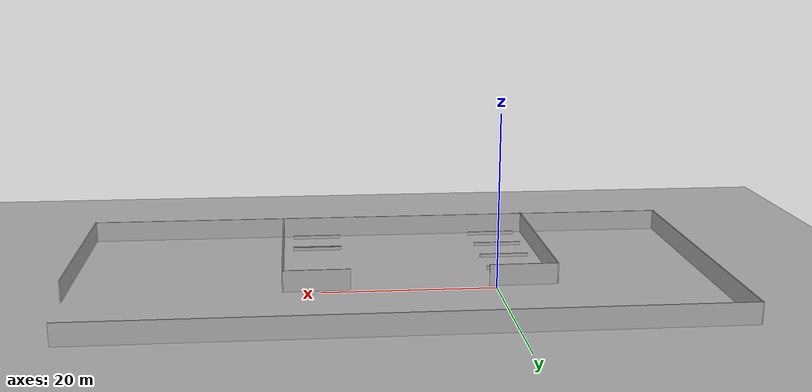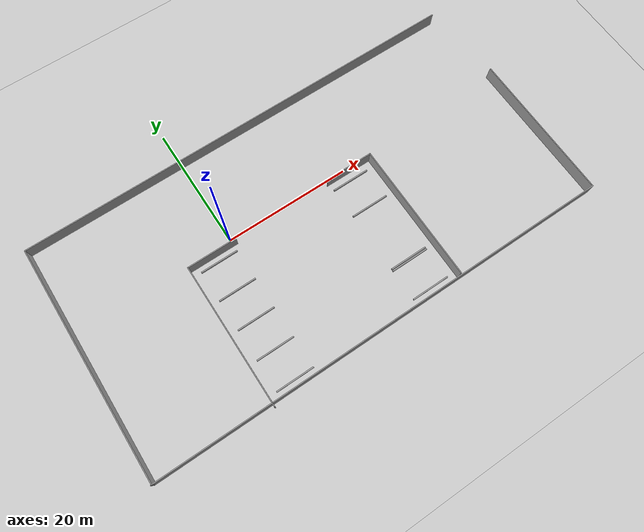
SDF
<sdf version="1.7">
 <world name="rentcar_world_2">
  <light name="sun" type="directional">
   <pose>0 0 10 0 -0 0</pose>
   <diffuse>0.8 0.8 0.8 1</diffuse>
   <specular>0.2 0.2 0.2 1</specular>
   <attenuation>
    <range>1000</range>
    <constant>0.9</constant>
    <linear>0.01</linear>
    <quadratic>0.001</quadratic>
   </attenuation>
   <direction>-0.5 0.1 -0.9</direction>
   <spot><inner_angle>0</inner_angle><outer_angle>0</outer_angle><falloff>0</falloff></spot>
  </light>
  <model name="ground_plane">
   <static>1</static>
   <link name="link">
    <collision name="collision">
     <geometry><plane><normal>0 0 1</normal><size>100 100</size></plane></geometry>
     <surface>
      <contact><collide_bitmask>65535</collide_bitmask></contact>
      <friction><ode><mu>100</mu><mu2>50</mu2></ode></friction>
     </surface>
    </collision>
    <visual name="visual">
     <cast_shadows>0</cast_shadows>
     <geometry><plane><normal>0 0 1</normal><size>100 100</size></plane></geometry>
     <material>
      <script><uri>file://media/materials/scripts/gazebo.material</uri><name>Gazebo/Grey</name></script>
     </material>
    </visual>
   </link>
  </model>
  <gravity>0 0 -9.8</gravity>
  <magnetic_field>6e-06 2.3e-05 -4.2e-05</magnetic_field>
  <atmosphere type="adiabatic"/>
  <physics type="ode">
   <max_step_size>0.001</max_step_size>
   <real_time_factor>1</real_time_factor>
   <real_time_update_rate>1000</real_time_update_rate>
  </physics>
  <scene><ambient>0.4 0.4 0.4 1</ambient><background>0.7 0.7 0.7 1</background><shadows>1</shadows></scene>
  <audio><device>default</device></audio>
  <spherical_coordinates>
   <surface_model>EARTH_WGS84</surface_model>
   <latitude_deg>0</latitude_deg>
   <longitude_deg>0</longitude_deg>
   <elevation>0</elevation>
   <heading_deg>0</heading_deg>
  </spherical_coordinates>
  <model name="Untitled0219">
   <pose>11.5241 -4.83584 0 0 -0 0</pose>
   <link name="Wall_11">
    <collision name="Wall_11_Collision">
     <geometry><box><size>74 0.15 2.5</size></box></geometry>
     <pose>0 0 1.25 0 -0 0</pose>
    </collision>
    <visual name="Wall_11_Visual">
     <pose>0 0 1.25 0 -0 0</pose>
     <geometry><box><size>74 0.15 2.5</size></box></geometry>
     <material>
      <script><uri>file://media/materials/scripts/gazebo.material</uri><name>Gazebo/Grey</name></script>
      <ambient>1 1 1 1</ambient>
     </material>
     <meta><layer>0</layer></meta>
    </visual>
    <pose>0 -18.2742 0 0 -0 3.14159</pose>
   </link>
   <link name="Wall_12">
    <collision name="Wall_12_Collision">
     <geometry><box><size>37.1983 0.15 2.5</size></box></geometry>
     <pose>0 0 1.25 0 -0 0</pose>
    </collision>
    <visual name="Wall_12_Visual">
     <pose>0 0 1.25 0 -0 0</pose>
     <geometry><box><size>37.1983 0.15 2.5</size></box></geometry>
     <material>
      <script><uri>file://media/materials/scripts/gazebo.material</uri><name>Gazebo/Grey</name></script>
      <ambient>1 1 1 1</ambient>
     </material>
     <meta><layer>0</layer></meta>
    </visual>
    <pose>-36.7965 0.249955 0 0 -0 1.56963</pose>
   </link>
   <link name="Wall_13">
    <collision name="Wall_13_Collision">
     <geometry><box><size>72.25 0.15 2.5</size></box></geometry>
     <pose>0 0 1.25 0 -0 0</pose>
    </collision>
    <visual name="Wall_13_Visual">
     <pose>0 0 1.25 0 -0 0</pose>
     <geometry><box><size>72.25 0.15 2.5</size></box></geometry>
     <material>
      <script><uri>file://media/materials/scripts/gazebo.material</uri><name>Gazebo/Grey</name></script>
      <ambient>1 1 1 1</ambient>
     </material>
     <meta><layer>0</layer></meta>
    </visual>
    <pose>-0.643999 18.7741 0 0 -0 0</pose>
   </link>
   <link name="Wall_17">
    <collision name="Wall_17_Collision">
     <geometry><box><size>7.65571 0.15 2.5</size></box></geometry>
     <pose>0 0 1.25 0 -0 0</pose>
    </collision>
    <visual name="Wall_17_Visual">
     <pose>0 0 1.25 0 -0 0</pose>
     <geometry><box><size>7.65571 0.15 2.5</size></box></geometry>
     <material>
      <script><uri>file://media/materials/scripts/gazebo.material</uri><name>Gazebo/Grey</name></script>
      <ambient>1 1 1 1</ambient>
     </material>
     <meta><layer>0</layer></meta>
    </visual>
    <pose>8.90551 4.09783 0 0 -0 0</pose>
   </link>
   <link name="Wall_18">
    <collision name="Wall_18_Collision">
     <geometry><box><size>22.25 0.15 2.5</size></box></geometry>
     <pose>0 0 1.25 0 -0 0</pose>
    </collision>
    <visual name="Wall_18_Visual">
     <pose>0 0 1.25 0 -0 0</pose>
     <geometry><box><size>22.25 0.15 2.5</size></box></geometry>
     <material>
      <script><uri>file://media/materials/scripts/gazebo.material</uri><name>Gazebo/Grey</name></script>
      <ambient>1 1 1 1</ambient>
     </material>
     <meta><layer>0</layer></meta>
    </visual>
    <pose>12.7287 -6.95217 0 0 -0 -1.5708</pose>
   </link>
   <link name="Wall_25">
    <collision name="Wall_25_Collision">
     <geometry><box><size>24 0.15 2.5</size></box></geometry>
     <pose>0 0 1.25 0 -0 0</pose>
    </collision>
    <visual name="Wall_25_Visual">
     <pose>0 0 1.25 0 -0 0</pose>
     <geometry><box><size>24 0.15 2.5</size></box></geometry>
     <material>
      <script><uri>file://media/materials/scripts/gazebo.material</uri><name>Gazebo/Grey</name></script>
      <ambient>1 1 1 1</ambient>
     </material>
     <meta><layer>0</layer></meta>
    </visual>
    <pose>36.925 -6.34916 0 0 -0 1.5708</pose>
   </link>
   <link name="Wall_5">
    <collision name="Wall_5_Collision">
     <geometry><box><size>8 0.15 2.5</size></box></geometry>
     <pose>0 0 1.25 0 -0 0</pose>
    </collision>
    <visual name="Wall_5_Visual">
     <pose>0 0 1.25 0 -0 0</pose>
     <geometry><box><size>8 0.15 2.5</size></box></geometry>
     <material>
      <script><uri>file://media/materials/scripts/gazebo.material</uri><name>Gazebo/Grey</name></script>
      <ambient>1 1 1 1</ambient>
     </material>
     <meta><layer>0</layer></meta>
    </visual>
    <pose>-14.8491 3.82584 0 0 -0 0</pose>
   </link>
   <link name="Wall_7">
    <collision name="Wall_7_Collision">
     <geometry><box><size>22.75 0.15 2.5</size></box></geometry>
     <pose>0 0 1.25 0 -0 0</pose>
    </collision>
    <visual name="Wall_7_Visual">
     <pose>0 0 1.25 0 -0 0</pose>
     <geometry><box><size>22.75 0.15 2.5</size></box></geometry>
     <material>
      <script><uri>file://media/materials/scripts/gazebo.material</uri><name>Gazebo/Grey</name></script>
      <ambient>1 1 1 1</ambient>
     </material>
     <meta><layer>0</layer></meta>
    </visual>
    <pose>-18.7741 -7.47416 0 0 -0 -1.5708</pose>
   </link>
   <static>1</static>
  </model>
  <model name="side_curb_clone">
   <link name="link_0">
    <inertial>
     <mass>0.405133</mass>
     <inertia>
      <ixx>0.00551642</ixx>
      <ixy>0</ixy>
      <ixz>0</ixz>
      <iyy>1.23147</iyy>
      <iyz>0</iyz>
      <izz>1.22833</izz>
     </inertia>
    </inertial>
    <pose>-4e-06 2e-06 0 0 -0 0</pose>
    <visual name="visual">
     <geometry><box><size>6 0.2 0.4</size></box></geometry>
     <material>
      <lighting>1</lighting>
      <script><uri>file://media/materials/scripts/gazebo.material</uri><name>Gazebo/Grey</name></script>
      <shader type="pixel"><normal_map>__default__</normal_map></shader>
      <ambient>0.3 0.3 0.3 1</ambient>
      <diffuse>0.7 0.7 0.7 1</diffuse>
      <specular>0.01 0.01 0.01 1</specular>
      <emissive>0 0 0 1</emissive>
     </material>
    </visual>
    <collision name="collision">
     <geometry><box><size>6.02891 0.187614 0.358046</size></box></geometry>
     <surface>
      <friction>
       <ode><mu>1</mu><mu2>1</mu2><fdir1>0 0 0</fdir1><slip1>0</slip1><slip2>0</slip2></ode>
       <torsional>
        <coefficient>1</coefficient>
        <patch_radius>0</patch_radius>
        <surface_radius>0</surface_radius>
        <use_patch_radius>1</use_patch_radius>
        <ode><slip>0</slip></ode>
       </torsional>
      </friction>
      <bounce><restitution_coefficient>0</restitution_coefficient><threshold>1e+06</threshold></bounce>
      <contact>
       <collide_without_contact>0</collide_without_contact>
       <collide_without_contact_bitmask>1</collide_without_contact_bitmask>
       <collide_bitmask>1</collide_bitmask>
       <ode>
        <soft_cfm>0</soft_cfm>
        <soft_erp>0.2</soft_erp>
        <kp>1e+13</kp>
        <kd>1</kd>
        <max_vel>0.01</max_vel>
        <min_depth>0</min_depth>
       </ode>
       <bullet>
        <split_impulse>1</split_impulse>
        <split_impulse_penetration_threshold>-0.01</split_impulse_penetration_threshold>
        <soft_cfm>0</soft_cfm>
        <soft_erp>0.2</soft_erp>
        <kp>1e+13</kp>
        <kd>1</kd>
       </bullet>
      </contact>
     </surface>
    </collision>
   </link>
   <static>0</static>
   <pose>-3 -7 0.2 0 -0 0</pose>
  </model>
  <model name="side_curb_clone_clone">
   <link name="link_0">
    <inertial>
     <mass>0.405133</mass>
     <inertia>
      <ixx>0.00551642</ixx>
      <ixy>0</ixy>
      <ixz>0</ixz>
      <iyy>1.23147</iyy>
      <iyz>0</iyz>
      <izz>1.22833</izz>
     </inertia>
    </inertial>
    <pose>-4e-06 2e-06 0 0 -0 0</pose>
    <visual name="visual">
     <geometry><box><size>6 0.2 0.4</size></box></geometry>
     <material>
      <lighting>1</lighting>
      <script><uri>file://media/materials/scripts/gazebo.material</uri><name>Gazebo/Grey</name></script>
      <shader type="pixel"><normal_map>__default__</normal_map></shader>
      <ambient>0.3 0.3 0.3 1</ambient>
      <diffuse>0.7 0.7 0.7 1</diffuse>
      <specular>0.01 0.01 0.01 1</specular>
      <emissive>0 0 0 1</emissive>
     </material>
    </visual>
    <collision name="collision">
     <geometry><box><size>6.02891 0.187614 0.358046</size></box></geometry>
     <surface>
      <friction>
       <ode><mu>1</mu><mu2>1</mu2><fdir1>0 0 0</fdir1><slip1>0</slip1><slip2>0</slip2></ode>
       <torsional>
        <coefficient>1</coefficient>
        <patch_radius>0</patch_radius>
        <surface_radius>0</surface_radius>
        <use_patch_radius>1</use_patch_radius>
        <ode><slip>0</slip></ode>
       </torsional>
      </friction>
      <bounce><restitution_coefficient>0</restitution_coefficient><threshold>1e+06</threshold></bounce>
      <contact>
       <collide_without_contact>0</collide_without_contact>
       <collide_without_contact_bitmask>1</collide_without_contact_bitmask>
       <collide_bitmask>1</collide_bitmask>
       <ode>
        <soft_cfm>0</soft_cfm>
        <soft_erp>0.2</soft_erp>
        <kp>1e+13</kp>
        <kd>1</kd>
        <max_vel>0.01</max_vel>
        <min_depth>0</min_depth>
       </ode>
       <bullet>
        <split_impulse>1</split_impulse>
        <split_impulse_penetration_threshold>-0.01</split_impulse_penetration_threshold>
        <soft_cfm>0</soft_cfm>
        <soft_erp>0.2</soft_erp>
        <kp>1e+13</kp>
        <kd>1</kd>
       </bullet>
      </contact>
     </surface>
    </collision>
   </link>
   <static>0</static>
   <pose>-3 -2 0.2 0 -0 0</pose>
  </model>
  <model name="side_curb_clone_clone_0">
   <link name="link_0">
    <inertial>
     <mass>0.405133</mass>
     <inertia>
      <ixx>0.00551642</ixx>
      <ixy>0</ixy>
      <ixz>0</ixz>
      <iyy>1.23147</iyy>
      <iyz>0</iyz>
      <izz>1.22833</izz>
     </inertia>
    </inertial>
    <pose>-4e-06 2e-06 0 0 -0 0</pose>
    <visual name="visual">
     <geometry><box><size>6 0.2 0.4</size></box></geometry>
     <material>
      <lighting>1</lighting>
      <script><uri>file://media/materials/scripts/gazebo.material</uri><name>Gazebo/Grey</name></script>
      <shader type="pixel"><normal_map>__default__</normal_map></shader>
      <ambient>0.3 0.3 0.3 1</ambient>
      <diffuse>0.7 0.7 0.7 1</diffuse>
      <specular>0.01 0.01 0.01 1</specular>
      <emissive>0 0 0 1</emissive>
     </material>
    </visual>
    <collision name="collision">
     <geometry><box><size>6.02891 0.187614 0.358046</size></box></geometry>
     <surface>
      <friction>
       <ode><mu>1</mu><mu2>1</mu2><fdir1>0 0 0</fdir1><slip1>0</slip1><slip2>0</slip2></ode>
       <torsional>
        <coefficient>1</coefficient>
        <patch_radius>0</patch_radius>
        <surface_radius>0</surface_radius>
        <use_patch_radius>1</use_patch_radius>
        <ode><slip>0</slip></ode>
       </torsional>
      </friction>
      <bounce><restitution_coefficient>0</restitution_coefficient><threshold>1e+06</threshold></bounce>
      <contact>
       <collide_without_contact>0</collide_without_contact>
       <collide_without_contact_bitmask>1</collide_without_contact_bitmask>
       <collide_bitmask>1</collide_bitmask>
       <ode>
        <soft_cfm>0</soft_cfm>
        <soft_erp>0.2</soft_erp>
        <kp>1e+13</kp>
        <kd>1</kd>
        <max_vel>0.01</max_vel>
        <min_depth>0</min_depth>
       </ode>
       <bullet>
        <split_impulse>1</split_impulse>
        <split_impulse_penetration_threshold>-0.01</split_impulse_penetration_threshold>
        <soft_cfm>0</soft_cfm>
        <soft_erp>0.2</soft_erp>
        <kp>1e+13</kp>
        <kd>1</kd>
       </bullet>
      </contact>
     </surface>
    </collision>
   </link>
   <static>0</static>
   <pose>-3 -12 0.2 0 -0 0</pose>
  </model>
  <model name="side_curb_clone_clone_0_clone">
   <link name="link_0">
    <inertial>
     <mass>0.405133</mass>
     <inertia>
      <ixx>0.00551642</ixx>
      <ixy>0</ixy>
      <ixz>0</ixz>
      <iyy>1.23147</iyy>
      <iyz>0</iyz>
      <izz>1.22833</izz>
     </inertia>
    </inertial>
    <pose>-4e-06 2e-06 0 0 -0 0</pose>
    <visual name="visual">
     <geometry><box><size>6 0.2 0.4</size></box></geometry>
     <material>
      <lighting>1</lighting>
      <script><uri>file://media/materials/scripts/gazebo.material</uri><name>Gazebo/Grey</name></script>
      <shader type="pixel"><normal_map>__default__</normal_map></shader>
      <ambient>0.3 0.3 0.3 1</ambient>
      <diffuse>0.7 0.7 0.7 1</diffuse>
      <specular>0.01 0.01 0.01 1</specular>
      <emissive>0 0 0 1</emissive>
     </material>
    </visual>
    <collision name="collision">
     <geometry><box><size>6.02891 0.187614 0.358046</size></box></geometry>
     <surface>
      <friction>
       <ode><mu>1</mu><mu2>1</mu2><fdir1>0 0 0</fdir1><slip1>0</slip1><slip2>0</slip2></ode>
       <torsional>
        <coefficient>1</coefficient>
        <patch_radius>0</patch_radius>
        <surface_radius>0</surface_radius>
        <use_patch_radius>1</use_patch_radius>
        <ode><slip>0</slip></ode>
       </torsional>
      </friction>
      <bounce><restitution_coefficient>0</restitution_coefficient><threshold>1e+06</threshold></bounce>
      <contact>
       <collide_without_contact>0</collide_without_contact>
       <collide_without_contact_bitmask>1</collide_without_contact_bitmask>
       <collide_bitmask>1</collide_bitmask>
       <ode>
        <soft_cfm>0</soft_cfm>
        <soft_erp>0.2</soft_erp>
        <kp>1e+13</kp>
        <kd>1</kd>
        <max_vel>0.01</max_vel>
        <min_depth>0</min_depth>
       </ode>
       <bullet>
        <split_impulse>1</split_impulse>
        <split_impulse_penetration_threshold>-0.01</split_impulse_penetration_threshold>
        <soft_cfm>0</soft_cfm>
        <soft_erp>0.2</soft_erp>
        <kp>1e+13</kp>
        <kd>1</kd>
       </bullet>
      </contact>
     </surface>
    </collision>
   </link>
   <static>0</static>
   <pose>-3 -17 0.2 0 -0 0</pose>
  </model>
  <model name="side_curb_clone_clone_0_clone_clone">
   <link name="link_0">
    <inertial>
     <mass>0.405133</mass>
     <inertia>
      <ixx>0.00551642</ixx>
      <ixy>0</ixy>
      <ixz>0</ixz>
      <iyy>1.23147</iyy>
      <iyz>0</iyz>
      <izz>1.22833</izz>
     </inertia>
    </inertial>
    <pose>-4e-06 2e-06 0 0 -0 0</pose>
    <visual name="visual">
     <geometry><box><size>6 0.2 0.4</size></box></geometry>
     <material>
      <lighting>1</lighting>
      <script><uri>file://media/materials/scripts/gazebo.material</uri><name>Gazebo/Grey</name></script>
      <shader type="pixel"><normal_map>__default__</normal_map></shader>
      <ambient>0.3 0.3 0.3 1</ambient>
      <diffuse>0.7 0.7 0.7 1</diffuse>
      <specular>0.01 0.01 0.01 1</specular>
      <emissive>0 0 0 1</emissive>
     </material>
    </visual>
    <collision name="collision">
     <geometry><box><size>6.02891 0.187614 0.358046</size></box></geometry>
     <surface>
      <friction>
       <ode><mu>1</mu><mu2>1</mu2><fdir1>0 0 0</fdir1><slip1>0</slip1><slip2>0</slip2></ode>
       <torsional>
        <coefficient>1</coefficient>
        <patch_radius>0</patch_radius>
        <surface_radius>0</surface_radius>
        <use_patch_radius>1</use_patch_radius>
        <ode><slip>0</slip></ode>
       </torsional>
      </friction>
      <bounce><restitution_coefficient>0</restitution_coefficient><threshold>1e+06</threshold></bounce>
      <contact>
       <collide_without_contact>0</collide_without_contact>
       <collide_without_contact_bitmask>1</collide_without_contact_bitmask>
       <collide_bitmask>1</collide_bitmask>
       <ode>
        <soft_cfm>0</soft_cfm>
        <soft_erp>0.2</soft_erp>
        <kp>1e+13</kp>
        <kd>1</kd>
        <max_vel>0.01</max_vel>
        <min_depth>0</min_depth>
       </ode>
       <bullet>
        <split_impulse>1</split_impulse>
        <split_impulse_penetration_threshold>-0.01</split_impulse_penetration_threshold>
        <soft_cfm>0</soft_cfm>
        <soft_erp>0.2</soft_erp>
        <kp>1e+13</kp>
        <kd>1</kd>
       </bullet>
      </contact>
     </surface>
    </collision>
   </link>
   <static>0</static>
   <pose>-3 -22 0.2 0 -0 0</pose>
  </model>
  <model name="side_curb_clone_clone_0_clone_clone_0">
   <link name="link_0">
    <inertial>
     <mass>0.405133</mass>
     <inertia>
      <ixx>0.00551642</ixx>
      <ixy>0</ixy>
      <ixz>0</ixz>
      <iyy>1.23147</iyy>
      <iyz>0</iyz>
      <izz>1.22833</izz>
     </inertia>
    </inertial>
    <pose>-4e-06 2e-06 0 0 -0 0</pose>
    <visual name="visual">
     <geometry><box><size>6 0.2 0.4</size></box></geometry>
     <material>
      <lighting>1</lighting>
      <script><uri>file://media/materials/scripts/gazebo.material</uri><name>Gazebo/Grey</name></script>
      <shader type="pixel"><normal_map>__default__</normal_map></shader>
      <ambient>0.3 0.3 0.3 1</ambient>
      <diffuse>0.7 0.7 0.7 1</diffuse>
      <specular>0.01 0.01 0.01 1</specular>
      <emissive>0 0 0 1</emissive>
     </material>
    </visual>
    <collision name="collision">
     <geometry><box><size>6.02891 0.187614 0.358046</size></box></geometry>
     <surface>
      <friction>
       <ode><mu>1</mu><mu2>1</mu2><fdir1>0 0 0</fdir1><slip1>0</slip1><slip2>0</slip2></ode>
       <torsional>
        <coefficient>1</coefficient>
        <patch_radius>0</patch_radius>
        <surface_radius>0</surface_radius>
        <use_patch_radius>1</use_patch_radius>
        <ode><slip>0</slip></ode>
       </torsional>
      </friction>
      <bounce><restitution_coefficient>0</restitution_coefficient><threshold>1e+06</threshold></bounce>
      <contact>
       <collide_without_contact>0</collide_without_contact>
       <collide_without_contact_bitmask>1</collide_without_contact_bitmask>
       <collide_bitmask>1</collide_bitmask>
       <ode>
        <soft_cfm>0</soft_cfm>
        <soft_erp>0.2</soft_erp>
        <kp>1e+13</kp>
        <kd>1</kd>
        <max_vel>0.01</max_vel>
        <min_depth>0</min_depth>
       </ode>
       <bullet>
        <split_impulse>1</split_impulse>
        <split_impulse_penetration_threshold>-0.01</split_impulse_penetration_threshold>
        <soft_cfm>0</soft_cfm>
        <soft_erp>0.2</soft_erp>
        <kp>1e+13</kp>
        <kd>1</kd>
       </bullet>
      </contact>
     </surface>
    </collision>
   </link>
   <static>0</static>
   <pose>20 -2 0.2 0 -0 0</pose>
  </model>
  <model name="side_curb_clone_clone_0_clone_clone_0_clone">
   <link name="link_0">
    <inertial>
     <mass>0.405133</mass>
     <inertia>
      <ixx>0.00551642</ixx>
      <ixy>0</ixy>
      <ixz>0</ixz>
      <iyy>1.23147</iyy>
      <iyz>0</iyz>
      <izz>1.22833</izz>
     </inertia>
    </inertial>
    <pose>-4e-06 2e-06 0 0 -0 0</pose>
    <visual name="visual">
     <geometry><box><size>6 0.2 0.4</size></box></geometry>
     <material>
      <lighting>1</lighting>
      <script><uri>file://media/materials/scripts/gazebo.material</uri><name>Gazebo/Grey</name></script>
      <shader type="pixel"><normal_map>__default__</normal_map></shader>
      <ambient>0.3 0.3 0.3 1</ambient>
      <diffuse>0.7 0.7 0.7 1</diffuse>
      <specular>0.01 0.01 0.01 1</specular>
      <emissive>0 0 0 1</emissive>
     </material>
    </visual>
    <collision name="collision">
     <geometry><box><size>6.02891 0.187614 0.358046</size></box></geometry>
     <surface>
      <friction>
       <ode><mu>1</mu><mu2>1</mu2><fdir1>0 0 0</fdir1><slip1>0</slip1><slip2>0</slip2></ode>
       <torsional>
        <coefficient>1</coefficient>
        <patch_radius>0</patch_radius>
        <surface_radius>0</surface_radius>
        <use_patch_radius>1</use_patch_radius>
        <ode><slip>0</slip></ode>
       </torsional>
      </friction>
      <bounce><restitution_coefficient>0</restitution_coefficient><threshold>1e+06</threshold></bounce>
      <contact>
       <collide_without_contact>0</collide_without_contact>
       <collide_without_contact_bitmask>1</collide_without_contact_bitmask>
       <collide_bitmask>1</collide_bitmask>
       <ode>
        <soft_cfm>0</soft_cfm>
        <soft_erp>0.2</soft_erp>
        <kp>1e+13</kp>
        <kd>1</kd>
        <max_vel>0.01</max_vel>
        <min_depth>0</min_depth>
       </ode>
       <bullet>
        <split_impulse>1</split_impulse>
        <split_impulse_penetration_threshold>-0.01</split_impulse_penetration_threshold>
        <soft_cfm>0</soft_cfm>
        <soft_erp>0.2</soft_erp>
        <kp>1e+13</kp>
        <kd>1</kd>
       </bullet>
      </contact>
     </surface>
    </collision>
   </link>
   <static>0</static>
   <pose>20 -7 0.2 0 -0 0</pose>
  </model>
  <model name="side_curb_clone_clone_0_clone_clone_0_clone_0">
   <link name="link_0">
    <inertial>
     <mass>0.405133</mass>
     <inertia>
      <ixx>0.00551642</ixx>
      <ixy>0</ixy>
      <ixz>0</ixz>
      <iyy>1.23147</iyy>
      <iyz>0</iyz>
      <izz>1.22833</izz>
     </inertia>
    </inertial>
    <pose>-4e-06 2e-06 0 0 -0 0</pose>
    <visual name="visual">
     <geometry><box><size>6 0.2 0.4</size></box></geometry>
     <material>
      <lighting>1</lighting>
      <script><uri>file://media/materials/scripts/gazebo.material</uri><name>Gazebo/Grey</name></script>
      <shader type="pixel"><normal_map>__default__</normal_map></shader>
      <ambient>0.3 0.3 0.3 1</ambient>
      <diffuse>0.7 0.7 0.7 1</diffuse>
      <specular>0.01 0.01 0.01 1</specular>
      <emissive>0 0 0 1</emissive>
     </material>
    </visual>
    <collision name="collision">
     <geometry><box><size>6.02891 0.187614 0.358046</size></box></geometry>
     <surface>
      <friction>
       <ode><mu>1</mu><mu2>1</mu2><fdir1>0 0 0</fdir1><slip1>0</slip1><slip2>0</slip2></ode>
       <torsional>
        <coefficient>1</coefficient>
        <patch_radius>0</patch_radius>
        <surface_radius>0</surface_radius>
        <use_patch_radius>1</use_patch_radius>
        <ode><slip>0</slip></ode>
       </torsional>
      </friction>
      <bounce><restitution_coefficient>0</restitution_coefficient><threshold>1e+06</threshold></bounce>
      <contact>
       <collide_without_contact>0</collide_without_contact>
       <collide_without_contact_bitmask>1</collide_without_contact_bitmask>
       <collide_bitmask>1</collide_bitmask>
       <ode>
        <soft_cfm>0</soft_cfm>
        <soft_erp>0.2</soft_erp>
        <kp>1e+13</kp>
        <kd>1</kd>
        <max_vel>0.01</max_vel>
        <min_depth>0</min_depth>
       </ode>
       <bullet>
        <split_impulse>1</split_impulse>
        <split_impulse_penetration_threshold>-0.01</split_impulse_penetration_threshold>
        <soft_cfm>0</soft_cfm>
        <soft_erp>0.2</soft_erp>
        <kp>1e+13</kp>
        <kd>1</kd>
       </bullet>
      </contact>
     </surface>
    </collision>
   </link>
   <static>0</static>
   <pose>20 -17 0.2 0 -0 0</pose>
  </model>
  <model name="side_curb_clone_clone_0_clone_clone_0_clone_1">
   <link name="link_0">
    <inertial>
     <mass>0.405133</mass>
     <inertia>
      <ixx>0.00551642</ixx>
      <ixy>0</ixy>
      <ixz>0</ixz>
      <iyy>1.23147</iyy>
      <iyz>0</iyz>
      <izz>1.22833</izz>
     </inertia>
    </inertial>
    <pose>-4e-06 2e-06 0 0 -0 0</pose>
    <visual name="visual">
     <geometry><box><size>6 0.2 0.4</size></box></geometry>
     <material>
      <lighting>1</lighting>
      <script><uri>file://media/materials/scripts/gazebo.material</uri><name>Gazebo/Grey</name></script>
      <shader type="pixel"><normal_map>__default__</normal_map></shader>
      <ambient>0.3 0.3 0.3 1</ambient>
      <diffuse>0.7 0.7 0.7 1</diffuse>
      <specular>0.01 0.01 0.01 1</specular>
      <emissive>0 0 0 1</emissive>
     </material>
    </visual>
    <collision name="collision">
     <geometry><box><size>6.02891 0.187614 0.358046</size></box></geometry>
     <surface>
      <friction>
       <ode><mu>1</mu><mu2>1</mu2><fdir1>0 0 0</fdir1><slip1>0</slip1><slip2>0</slip2></ode>
       <torsional>
        <coefficient>1</coefficient>
        <patch_radius>0</patch_radius>
        <surface_radius>0</surface_radius>
        <use_patch_radius>1</use_patch_radius>
        <ode><slip>0</slip></ode>
       </torsional>
      </friction>
      <bounce><restitution_coefficient>0</restitution_coefficient><threshold>1e+06</threshold></bounce>
      <contact>
       <collide_without_contact>0</collide_without_contact>
       <collide_without_contact_bitmask>1</collide_without_contact_bitmask>
       <collide_bitmask>1</collide_bitmask>
       <ode>
        <soft_cfm>0</soft_cfm>
        <soft_erp>0.2</soft_erp>
        <kp>1e+13</kp>
        <kd>1</kd>
        <max_vel>0.01</max_vel>
        <min_depth>0</min_depth>
       </ode>
       <bullet>
        <split_impulse>1</split_impulse>
        <split_impulse_penetration_threshold>-0.01</split_impulse_penetration_threshold>
        <soft_cfm>0</soft_cfm>
        <soft_erp>0.2</soft_erp>
        <kp>1e+13</kp>
        <kd>1</kd>
       </bullet>
      </contact>
     </surface>
    </collision>
   </link>
   <static>0</static>
   <pose>20.0256 -16.6987 0.2 0 -0 0</pose>
  </model>
  <model name="side_curb_clone_clone_0_clone_clone_0_clone_2">
   <link name="link_0">
    <inertial>
     <mass>0.405133</mass>
     <inertia>
      <ixx>0.00551642</ixx>
      <ixy>0</ixy>
      <ixz>0</ixz>
      <iyy>1.23147</iyy>
      <iyz>0</iyz>
      <izz>1.22833</izz>
     </inertia>
    </inertial>
    <pose>-4e-06 2e-06 0 0 -0 0</pose>
    <visual name="visual">
     <geometry><box><size>6 0.2 0.4</size></box></geometry>
     <material>
      <lighting>1</lighting>
      <script><uri>file://media/materials/scripts/gazebo.material</uri><name>Gazebo/Grey</name></script>
      <shader type="pixel"><normal_map>__default__</normal_map></shader>
      <ambient>0.3 0.3 0.3 1</ambient>
      <diffuse>0.7 0.7 0.7 1</diffuse>
      <specular>0.01 0.01 0.01 1</specular>
      <emissive>0 0 0 1</emissive>
     </material>
    </visual>
    <collision name="collision">
     <geometry><box><size>6.02891 0.187614 0.358046</size></box></geometry>
     <surface>
      <friction>
       <ode><mu>1</mu><mu2>1</mu2><fdir1>0 0 0</fdir1><slip1>0</slip1><slip2>0</slip2></ode>
       <torsional>
        <coefficient>1</coefficient>
        <patch_radius>0</patch_radius>
        <surface_radius>0</surface_radius>
        <use_patch_radius>1</use_patch_radius>
        <ode><slip>0</slip></ode>
       </torsional>
      </friction>
      <bounce><restitution_coefficient>0</restitution_coefficient><threshold>1e+06</threshold></bounce>
      <contact>
       <collide_without_contact>0</collide_without_contact>
       <collide_without_contact_bitmask>1</collide_without_contact_bitmask>
       <collide_bitmask>1</collide_bitmask>
       <ode>
        <soft_cfm>0</soft_cfm>
        <soft_erp>0.2</soft_erp>
        <kp>1e+13</kp>
        <kd>1</kd>
        <max_vel>0.01</max_vel>
        <min_depth>0</min_depth>
       </ode>
       <bullet>
        <split_impulse>1</split_impulse>
        <split_impulse_penetration_threshold>-0.01</split_impulse_penetration_threshold>
        <soft_cfm>0</soft_cfm>
        <soft_erp>0.2</soft_erp>
        <kp>1e+13</kp>
        <kd>1</kd>
       </bullet>
      </contact>
     </surface>
    </collision>
   </link>
   <static>0</static>
   <pose>20 -22 0.2 0 -0 0</pose>
  </model>
 </world>
</sdf>
